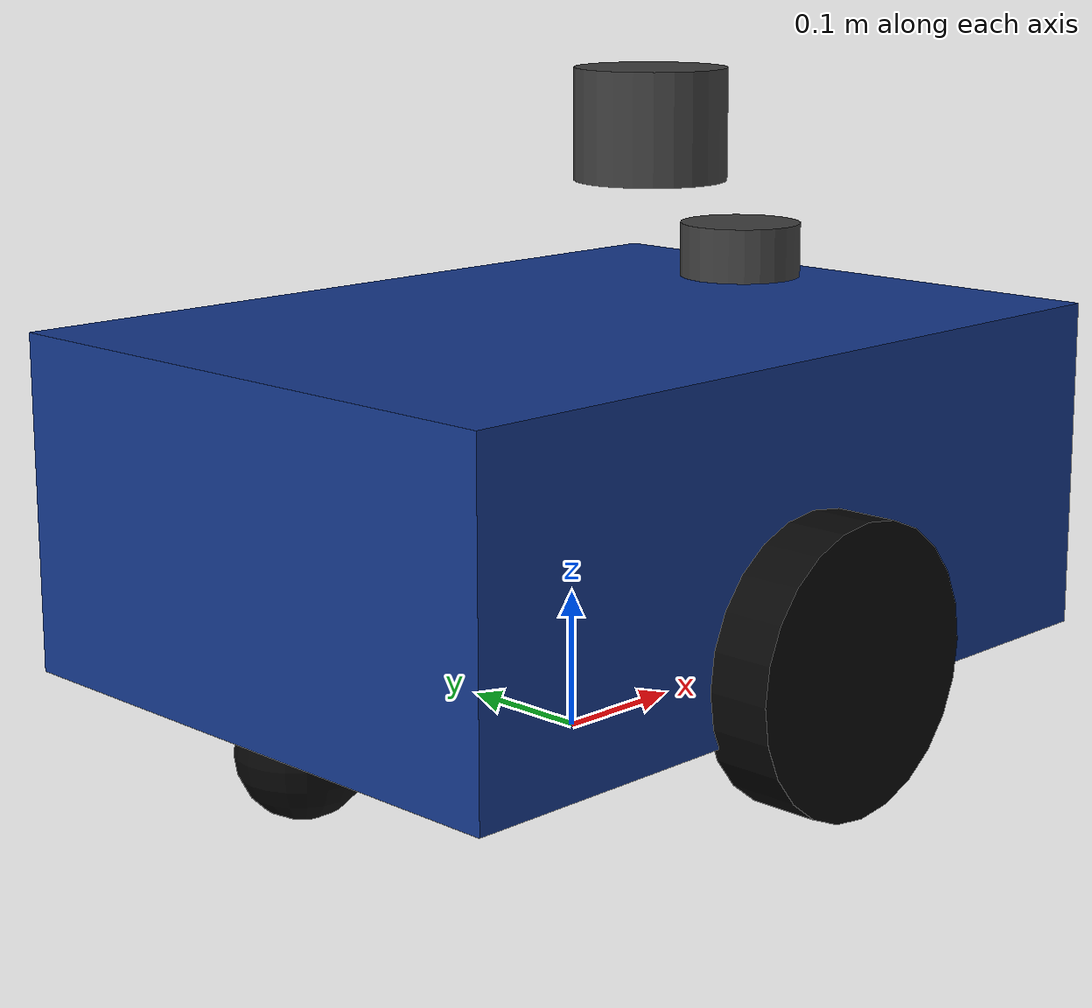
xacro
<?xml version="1.0"?>
<robot xmlns:xacro="http://www.ros.org/wiki/xacro" name="r680_sim">
  <xacro:arg name="use_ros2_control" default="false"/>
  <!-- Simulation assumptions only. Replace after physical R680 measurement. -->
  <xacro:property name="wheel_radius" value="0.10"/>
  <xacro:property name="wheel_width" value="0.05"/>
  <xacro:property name="wheel_separation" value="0.48"/>

  <material name="chassis_blue"><color rgba="0.08 0.22 0.55 1"/></material>
  <material name="wheel_black"><color rgba="0.03 0.03 0.03 1"/></material>
  <material name="sensor_gray"><color rgba="0.25 0.25 0.25 1"/></material>

  <link name="base_footprint"/>
  <joint name="base_footprint_joint" type="fixed">
    <parent link="base_footprint"/><child link="base_link"/>
    <origin xyz="0 0 0.18" rpy="0 0 0"/>
  </joint>

  <link name="base_link">
    <inertial><origin xyz="0 0 0"/><mass value="35.0"/><inertia ixx="0.70" ixy="0" ixz="0" iyy="1.20" iyz="0" izz="1.55"/></inertial>
    <visual><geometry><box size="0.60 0.44 0.24"/></geometry><material name="chassis_blue"/></visual>
    <collision><geometry><box size="0.60 0.44 0.24"/></geometry></collision>
  </link>

  <xacro:macro name="drive_wheel" params="side sign">
    <link name="${side}_wheel_link">
      <inertial><mass value="1.2"/><inertia ixx="0.006" ixy="0" ixz="0" iyy="0.006" iyz="0" izz="0.011"/></inertial>
      <visual><origin rpy="${pi/2} 0 0"/><geometry><cylinder radius="${wheel_radius}" length="${wheel_width}"/></geometry><material name="wheel_black"/></visual>
      <collision><origin rpy="${pi/2} 0 0"/><geometry><cylinder radius="${wheel_radius}" length="${wheel_width}"/></geometry></collision>
    </link>
    <joint name="${side}_wheel_joint" type="continuous">
      <parent link="base_link"/><child link="${side}_wheel_link"/>
      <origin xyz="0 ${sign * wheel_separation/2} -0.08"/><axis xyz="0 1 0"/>
      <dynamics damping="0.1" friction="0.05"/>
    </joint>
  </xacro:macro>
  <xacro:drive_wheel side="left" sign="1"/>
  <xacro:drive_wheel side="right" sign="-1"/>

  <xacro:macro name="caster" params="name x">
    <link name="${name}_caster_link">
      <inertial><mass value="0.3"/><inertia ixx="0.001" ixy="0" ixz="0" iyy="0.001" iyz="0" izz="0.001"/></inertial>
      <visual><geometry><sphere radius="0.045"/></geometry><material name="wheel_black"/></visual>
      <collision><geometry><sphere radius="0.045"/></geometry></collision>
    </link>
    <joint name="${name}_caster_joint" type="fixed">
      <parent link="base_link"/><child link="${name}_caster_link"/><origin xyz="${x} 0 -0.135"/>
    </joint>
  </xacro:macro>
  <xacro:caster name="front" x="0.25"/>
  <xacro:caster name="rear" x="-0.25"/>

  <link name="laser_2d_link">
    <visual><geometry><cylinder radius="0.045" length="0.04"/></geometry><material name="sensor_gray"/></visual>
  </link>
  <joint name="laser_2d_joint" type="fixed"><parent link="base_link"/><child link="laser_2d_link"/><origin xyz="0.18 0 0.15"/></joint>

  <link name="c16_link">
    <visual><geometry><cylinder radius="0.055" length="0.08"/></geometry><material name="sensor_gray"/></visual>
  </link>
  <joint name="c16_joint" type="fixed"><parent link="base_link"/><child link="c16_link"/><origin xyz="0.08 0 0.25"/></joint>

  <link name="imu_link"/>
  <joint name="imu_joint" type="fixed"><parent link="base_link"/><child link="imu_link"/><origin xyz="0 0 0.05"/></joint>

  <gazebo reference="base_link"><material>Gazebo/Blue</material></gazebo>
  <gazebo reference="left_wheel_link"><mu1>1.2</mu1><mu2>1.2</mu2><material>Gazebo/Black</material></gazebo>
  <gazebo reference="right_wheel_link"><mu1>1.2</mu1><mu2>1.2</mu2><material>Gazebo/Black</material></gazebo>
  <gazebo reference="front_caster_link"><mu1>0.05</mu1><mu2>0.05</mu2></gazebo>
  <gazebo reference="rear_caster_link"><mu1>0.05</mu1><mu2>0.05</mu2></gazebo>

  <xacro:unless value="$(arg use_ros2_control)">
    <gazebo>
      <plugin name="r680_diff_drive" filename="libgazebo_ros_diff_drive.so">
        <ros><namespace>/</namespace><remapping>cmd_vel:=cmd_vel</remapping><remapping>odom:=odom</remapping></ros>
        <update_rate>50</update_rate><left_joint>left_wheel_joint</left_joint><right_joint>right_wheel_joint</right_joint>
        <wheel_separation>${wheel_separation}</wheel_separation><wheel_diameter>${2 * wheel_radius}</wheel_diameter>
        <max_wheel_torque>45</max_wheel_torque><max_wheel_acceleration>1.0</max_wheel_acceleration>
        <publish_odom>true</publish_odom><publish_odom_tf>true</publish_odom_tf><publish_wheel_tf>true</publish_wheel_tf>
        <odometry_frame>odom</odometry_frame><robot_base_frame>base_footprint</robot_base_frame>
      </plugin>
    </gazebo>
  </xacro:unless>

  <xacro:if value="$(arg use_ros2_control)">
    <ros2_control name="GazeboSystem" type="system">
      <hardware><plugin>gazebo_ros2_control/GazeboSystem</plugin></hardware>
      <joint name="left_wheel_joint">
        <command_interface name="velocity"><param name="min">-12.0</param><param name="max">12.0</param></command_interface>
        <state_interface name="position"/><state_interface name="velocity"/>
      </joint>
      <joint name="right_wheel_joint">
        <command_interface name="velocity"><param name="min">-12.0</param><param name="max">12.0</param></command_interface>
        <state_interface name="position"/><state_interface name="velocity"/>
      </joint>
    </ros2_control>
    <gazebo>
      <plugin name="gazebo_ros2_control" filename="libgazebo_ros2_control.so">
        <robot_param>robot_description</robot_param><robot_param_node>robot_state_publisher</robot_param_node>
        <parameters>$(find r680_sim_description)/config/controllers.yaml</parameters>
      </plugin>
    </gazebo>
  </xacro:if>

  <gazebo reference="laser_2d_link">
    <sensor name="safety_scan" type="ray"><always_on>true</always_on><update_rate>15</update_rate><visualize>false</visualize>
      <ray><scan><horizontal><samples>720</samples><resolution>1</resolution><min_angle>-${pi}</min_angle><max_angle>${pi}</max_angle></horizontal></scan>
        <range><min>0.12</min><max>30.0</max><resolution>0.01</resolution></range><noise><type>gaussian</type><mean>0</mean><stddev>0.005</stddev></noise></ray>
      <plugin name="scan_ros" filename="libgazebo_ros_ray_sensor.so"><ros><remapping>~/out:=scan</remapping></ros><output_type>sensor_msgs/LaserScan</output_type><frame_name>laser_2d_link</frame_name></plugin>
    </sensor>
  </gazebo>

  <gazebo reference="c16_link">
    <sensor name="c16_sim" type="ray"><always_on>true</always_on><update_rate>10</update_rate><visualize>false</visualize>
      <ray><scan>
        <horizontal><samples>900</samples><resolution>1</resolution><min_angle>-${pi}</min_angle><max_angle>${pi}</max_angle></horizontal>
        <vertical><samples>16</samples><resolution>1</resolution><min_angle>-${15*pi/180}</min_angle><max_angle>${15*pi/180}</max_angle></vertical>
      </scan><range><min>0.30</min><max>50.0</max><resolution>0.02</resolution></range><noise><type>gaussian</type><mean>0</mean><stddev>0.01</stddev></noise></ray>
      <plugin name="c16_ros" filename="libgazebo_ros_ray_sensor.so"><ros><remapping>~/out:=points_raw</remapping></ros><output_type>sensor_msgs/PointCloud2</output_type><frame_name>c16_link</frame_name></plugin>
    </sensor>
  </gazebo>

  <gazebo reference="imu_link">
    <sensor name="imu_sensor" type="imu"><always_on>true</always_on><update_rate>100</update_rate>
      <plugin name="imu_ros" filename="libgazebo_ros_imu_sensor.so"><ros><remapping>~/out:=imu/data_raw</remapping></ros><initial_orientation_as_reference>false</initial_orientation_as_reference><frame_name>imu_link</frame_name></plugin>
    </sensor>
  </gazebo>
</robot>
